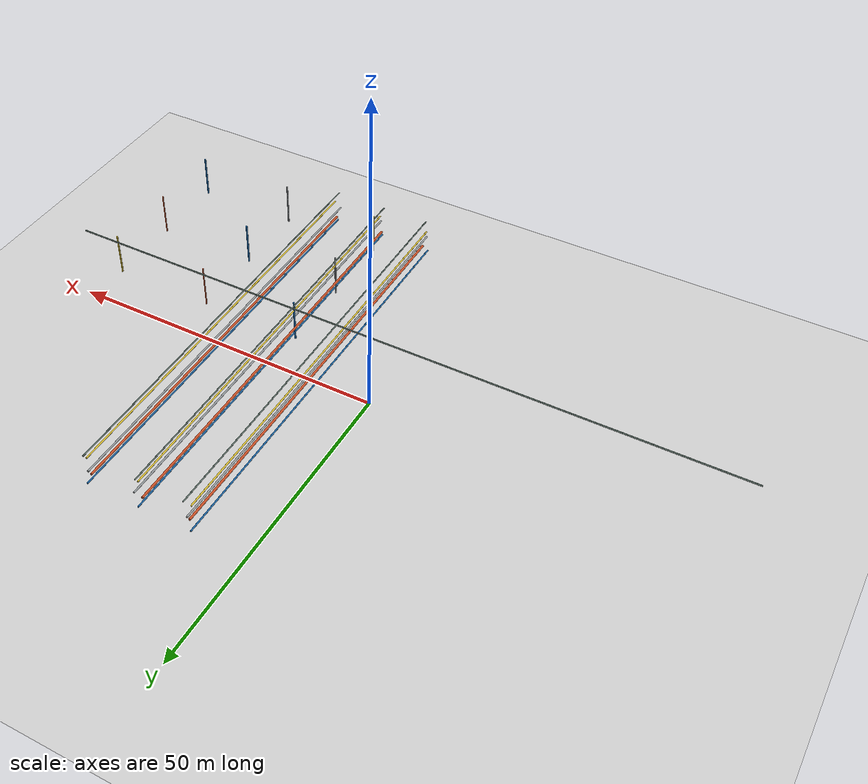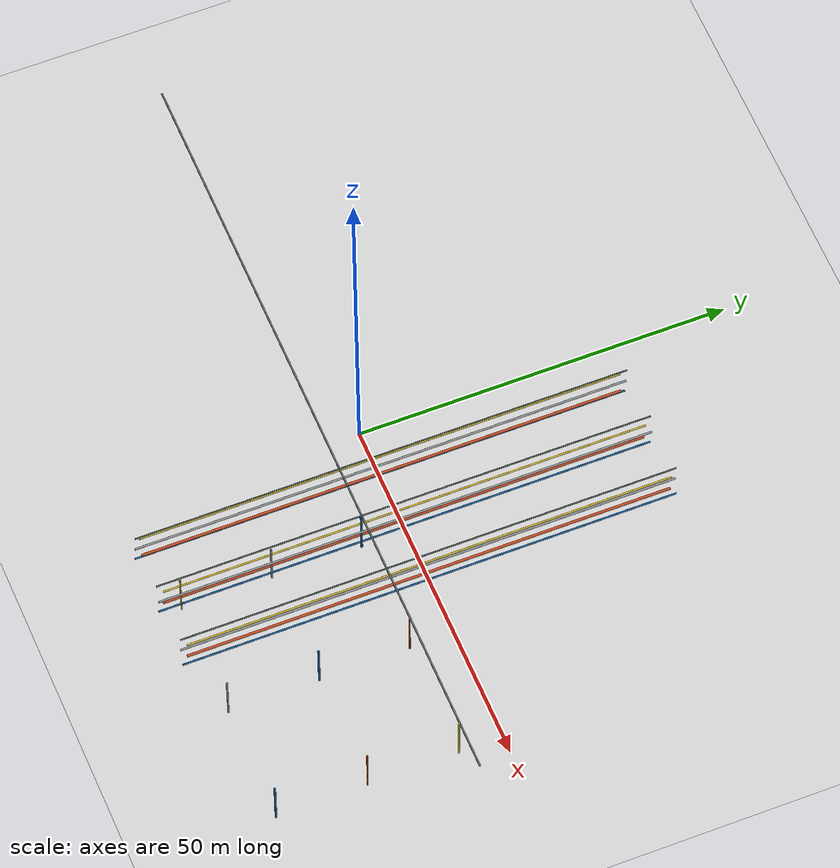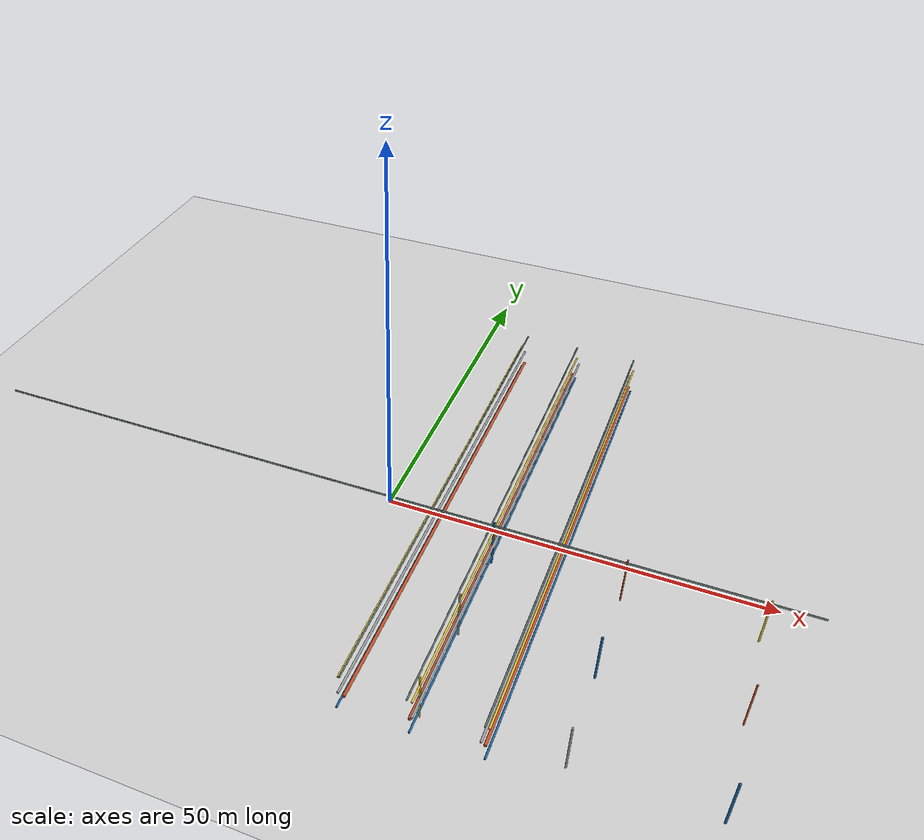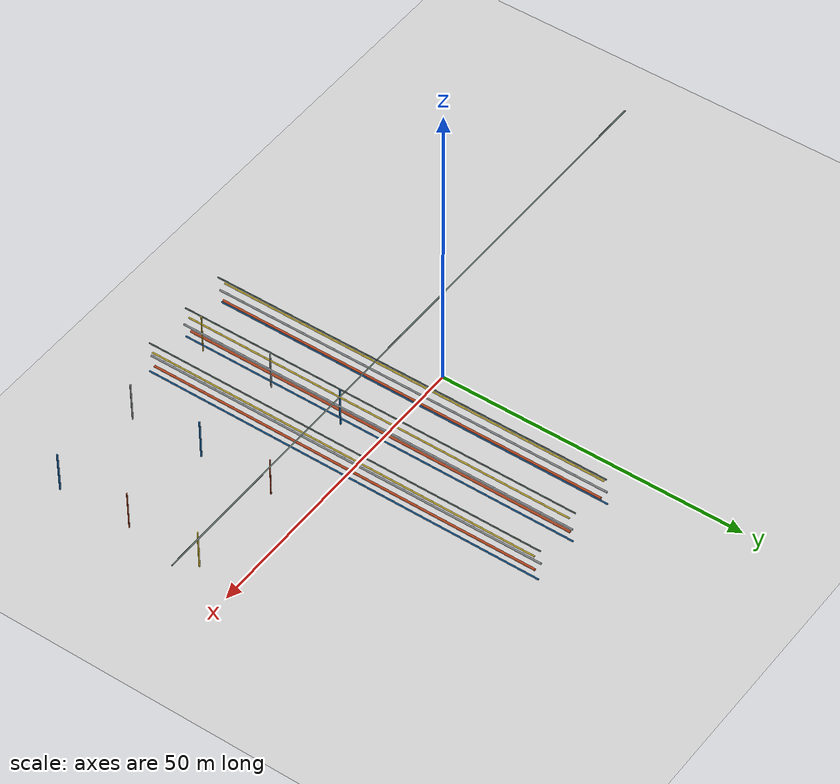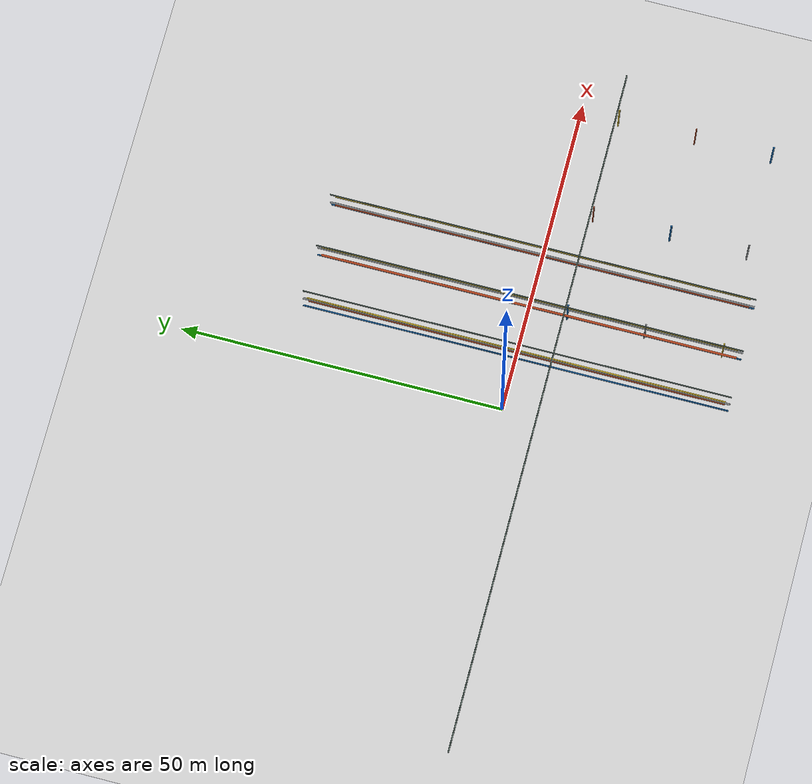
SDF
<sdf version="1.6">
 <world name="default">
  <include><uri>model://sun</uri></include>
  <include><uri>model://ground_plane</uri></include>
  <model name="dense_interwoven_pipe_grid">
   <static>true</static>
   <link name="x_pipe_r04_l4">
    <pose>0 -5.68 6.75 0 1.5708 0</pose>
    <collision name="collision">
     <geometry><cylinder><radius>0.110</radius><length>108.00</length></cylinder></geometry>
    </collision>
    <visual name="visual">
     <geometry><cylinder><radius>0.110</radius><length>108.00</length></cylinder></geometry>
     <material><ambient>0.20 0.24 0.23 1</ambient><diffuse>0.36 0.43 0.40 1</diffuse></material>
    </visual>
   </link>
   <link name="y_pipe_c06_l0">
    <pose>7.72 0 1.90 1.5708 0 0</pose>
    <collision name="collision">
     <geometry><cylinder><radius>0.120</radius><length>66.00</length></cylinder></geometry>
    </collision>
    <visual name="visual">
     <geometry><cylinder><radius>0.120</radius><length>66.00</length></cylinder></geometry>
     <material><ambient>0.05 0.22 0.36 1</ambient><diffuse>0.10 0.38 0.62 1</diffuse></material>
    </visual>
   </link>
   <link name="y_pipe_c06_l1">
    <pose>8.28 0 3.10 1.5708 0 0</pose>
    <collision name="collision">
     <geometry><cylinder><radius>0.180</radius><length>64.50</length></cylinder></geometry>
    </collision>
    <visual name="visual">
     <geometry><cylinder><radius>0.180</radius><length>64.50</length></cylinder></geometry>
     <material><ambient>0.45 0.17 0.08 1</ambient><diffuse>0.77 0.30 0.14 1</diffuse></material>
    </visual>
   </link>
   <link name="y_pipe_c06_l2">
    <pose>8.00 0 4.55 1.5708 0 0</pose>
    <collision name="collision">
     <geometry><cylinder><radius>0.140</radius><length>66.00</length></cylinder></geometry>
    </collision>
    <visual name="visual">
     <geometry><cylinder><radius>0.140</radius><length>66.00</length></cylinder></geometry>
     <material><ambient>0.34 0.35 0.36 1</ambient><diffuse>0.58 0.60 0.61 1</diffuse></material>
    </visual>
   </link>
   <link name="y_pipe_c06_l3">
    <pose>7.72 0 6.10 1.5708 0 0</pose>
    <collision name="collision">
     <geometry><cylinder><radius>0.120</radius><length>64.50</length></cylinder></geometry>
    </collision>
    <visual name="visual">
     <geometry><cylinder><radius>0.120</radius><length>64.50</length></cylinder></geometry>
     <material><ambient>0.48 0.42 0.12 1</ambient><diffuse>0.86 0.75 0.20 1</diffuse></material>
    </visual>
   </link>
   <link name="y_pipe_c06_l4">
    <pose>8.28 0 7.35 1.5708 0 0</pose>
    <collision name="collision">
     <geometry><cylinder><radius>0.100</radius><length>66.00</length></cylinder></geometry>
    </collision>
    <visual name="visual">
     <geometry><cylinder><radius>0.100</radius><length>66.00</length></cylinder></geometry>
     <material><ambient>0.20 0.24 0.23 1</ambient><diffuse>0.36 0.43 0.40 1</diffuse></material>
    </visual>
   </link>
   <link name="y_pipe_c07_l0">
    <pose>16.00 0 1.90 1.5708 0 0</pose>
    <collision name="collision">
     <geometry><cylinder><radius>0.120</radius><length>66.00</length></cylinder></geometry>
    </collision>
    <visual name="visual">
     <geometry><cylinder><radius>0.120</radius><length>66.00</length></cylinder></geometry>
     <material><ambient>0.05 0.22 0.36 1</ambient><diffuse>0.10 0.38 0.62 1</diffuse></material>
    </visual>
   </link>
   <link name="y_pipe_c07_l1">
    <pose>15.72 0 3.10 1.5708 0 0</pose>
    <collision name="collision">
     <geometry><cylinder><radius>0.180</radius><length>64.50</length></cylinder></geometry>
    </collision>
    <visual name="visual">
     <geometry><cylinder><radius>0.180</radius><length>64.50</length></cylinder></geometry>
     <material><ambient>0.45 0.17 0.08 1</ambient><diffuse>0.77 0.30 0.14 1</diffuse></material>
    </visual>
   </link>
   <link name="y_pipe_c07_l2">
    <pose>16.28 0 4.55 1.5708 0 0</pose>
    <collision name="collision">
     <geometry><cylinder><radius>0.140</radius><length>66.00</length></cylinder></geometry>
    </collision>
    <visual name="visual">
     <geometry><cylinder><radius>0.140</radius><length>66.00</length></cylinder></geometry>
     <material><ambient>0.34 0.35 0.36 1</ambient><diffuse>0.58 0.60 0.61 1</diffuse></material>
    </visual>
   </link>
   <link name="y_pipe_c07_l3">
    <pose>16.00 0 6.10 1.5708 0 0</pose>
    <collision name="collision">
     <geometry><cylinder><radius>0.120</radius><length>64.50</length></cylinder></geometry>
    </collision>
    <visual name="visual">
     <geometry><cylinder><radius>0.120</radius><length>64.50</length></cylinder></geometry>
     <material><ambient>0.48 0.42 0.12 1</ambient><diffuse>0.86 0.75 0.20 1</diffuse></material>
    </visual>
   </link>
   <link name="y_pipe_c07_l4">
    <pose>15.72 0 7.35 1.5708 0 0</pose>
    <collision name="collision">
     <geometry><cylinder><radius>0.100</radius><length>66.00</length></cylinder></geometry>
    </collision>
    <visual name="visual">
     <geometry><cylinder><radius>0.100</radius><length>66.00</length></cylinder></geometry>
     <material><ambient>0.20 0.24 0.23 1</ambient><diffuse>0.36 0.43 0.40 1</diffuse></material>
    </visual>
   </link>
   <link name="y_pipe_c08_l0">
    <pose>24.28 0 1.90 1.5708 0 0</pose>
    <collision name="collision">
     <geometry><cylinder><radius>0.120</radius><length>66.00</length></cylinder></geometry>
    </collision>
    <visual name="visual">
     <geometry><cylinder><radius>0.120</radius><length>66.00</length></cylinder></geometry>
     <material><ambient>0.05 0.22 0.36 1</ambient><diffuse>0.10 0.38 0.62 1</diffuse></material>
    </visual>
   </link>
   <link name="y_pipe_c08_l1">
    <pose>24.00 0 3.10 1.5708 0 0</pose>
    <collision name="collision">
     <geometry><cylinder><radius>0.180</radius><length>64.50</length></cylinder></geometry>
    </collision>
    <visual name="visual">
     <geometry><cylinder><radius>0.180</radius><length>64.50</length></cylinder></geometry>
     <material><ambient>0.45 0.17 0.08 1</ambient><diffuse>0.77 0.30 0.14 1</diffuse></material>
    </visual>
   </link>
   <link name="y_pipe_c08_l2">
    <pose>23.72 0 4.55 1.5708 0 0</pose>
    <collision name="collision">
     <geometry><cylinder><radius>0.140</radius><length>66.00</length></cylinder></geometry>
    </collision>
    <visual name="visual">
     <geometry><cylinder><radius>0.140</radius><length>66.00</length></cylinder></geometry>
     <material><ambient>0.34 0.35 0.36 1</ambient><diffuse>0.58 0.60 0.61 1</diffuse></material>
    </visual>
   </link>
   <link name="y_pipe_c08_l3">
    <pose>24.28 0 6.10 1.5708 0 0</pose>
    <collision name="collision">
     <geometry><cylinder><radius>0.120</radius><length>64.50</length></cylinder></geometry>
    </collision>
    <visual name="visual">
     <geometry><cylinder><radius>0.120</radius><length>64.50</length></cylinder></geometry>
     <material><ambient>0.48 0.42 0.12 1</ambient><diffuse>0.86 0.75 0.20 1</diffuse></material>
    </visual>
   </link>
   <link name="y_pipe_c08_l4">
    <pose>24.00 0 7.35 1.5708 0 0</pose>
    <collision name="collision">
     <geometry><cylinder><radius>0.100</radius><length>66.00</length></cylinder></geometry>
    </collision>
    <visual name="visual">
     <geometry><cylinder><radius>0.100</radius><length>66.00</length></cylinder></geometry>
     <material><ambient>0.20 0.24 0.23 1</ambient><diffuse>0.36 0.43 0.40 1</diffuse></material>
    </visual>
   </link>
   <link name="riser_03_00">
    <pose>16.0 -30.0 4.15 0 0 0</pose>
    <collision name="collision">
     <geometry><cylinder><radius>0.100</radius><length>6.90</length></cylinder></geometry>
    </collision>
    <visual name="visual">
     <geometry><cylinder><radius>0.100</radius><length>6.90</length></cylinder></geometry>
     <material><ambient>0.48 0.42 0.12 1</ambient><diffuse>0.86 0.75 0.20 1</diffuse></material>
    </visual>
   </link>
   <link name="riser_03_01">
    <pose>16.0 -18.0 4.15 0 0 0</pose>
    <collision name="collision">
     <geometry><cylinder><radius>0.120</radius><length>6.90</length></cylinder></geometry>
    </collision>
    <visual name="visual">
     <geometry><cylinder><radius>0.120</radius><length>6.90</length></cylinder></geometry>
     <material><ambient>0.34 0.35 0.36 1</ambient><diffuse>0.58 0.60 0.61 1</diffuse></material>
    </visual>
   </link>
   <link name="riser_03_02">
    <pose>16.0 -6.0 4.15 0 0 0</pose>
    <collision name="collision">
     <geometry><cylinder><radius>0.140</radius><length>6.90</length></cylinder></geometry>
    </collision>
    <visual name="visual">
     <geometry><cylinder><radius>0.140</radius><length>6.90</length></cylinder></geometry>
     <material><ambient>0.05 0.22 0.36 1</ambient><diffuse>0.10 0.38 0.62 1</diffuse></material>
    </visual>
   </link>
   <link name="riser_04_00">
    <pose>32.0 -30.0 4.15 0 0 0</pose>
    <collision name="collision">
     <geometry><cylinder><radius>0.120</radius><length>6.90</length></cylinder></geometry>
    </collision>
    <visual name="visual">
     <geometry><cylinder><radius>0.120</radius><length>6.90</length></cylinder></geometry>
     <material><ambient>0.34 0.35 0.36 1</ambient><diffuse>0.58 0.60 0.61 1</diffuse></material>
    </visual>
   </link>
   <link name="riser_04_01">
    <pose>32.0 -18.0 4.15 0 0 0</pose>
    <collision name="collision">
     <geometry><cylinder><radius>0.140</radius><length>6.90</length></cylinder></geometry>
    </collision>
    <visual name="visual">
     <geometry><cylinder><radius>0.140</radius><length>6.90</length></cylinder></geometry>
     <material><ambient>0.05 0.22 0.36 1</ambient><diffuse>0.10 0.38 0.62 1</diffuse></material>
    </visual>
   </link>
   <link name="riser_04_02">
    <pose>32.0 -6.0 4.15 0 0 0</pose>
    <collision name="collision">
     <geometry><cylinder><radius>0.100</radius><length>6.90</length></cylinder></geometry>
    </collision>
    <visual name="visual">
     <geometry><cylinder><radius>0.100</radius><length>6.90</length></cylinder></geometry>
     <material><ambient>0.45 0.17 0.08 1</ambient><diffuse>0.77 0.30 0.14 1</diffuse></material>
    </visual>
   </link>
   <link name="riser_05_00">
    <pose>48.0 -30.0 4.15 0 0 0</pose>
    <collision name="collision">
     <geometry><cylinder><radius>0.140</radius><length>6.90</length></cylinder></geometry>
    </collision>
    <visual name="visual">
     <geometry><cylinder><radius>0.140</radius><length>6.90</length></cylinder></geometry>
     <material><ambient>0.05 0.22 0.36 1</ambient><diffuse>0.10 0.38 0.62 1</diffuse></material>
    </visual>
   </link>
   <link name="riser_05_01">
    <pose>48.0 -18.0 4.15 0 0 0</pose>
    <collision name="collision">
     <geometry><cylinder><radius>0.100</radius><length>6.90</length></cylinder></geometry>
    </collision>
    <visual name="visual">
     <geometry><cylinder><radius>0.100</radius><length>6.90</length></cylinder></geometry>
     <material><ambient>0.45 0.17 0.08 1</ambient><diffuse>0.77 0.30 0.14 1</diffuse></material>
    </visual>
   </link>
   <link name="riser_05_02">
    <pose>48.0 -6.0 4.15 0 0 0</pose>
    <collision name="collision">
     <geometry><cylinder><radius>0.120</radius><length>6.90</length></cylinder></geometry>
    </collision>
    <visual name="visual">
     <geometry><cylinder><radius>0.120</radius><length>6.90</length></cylinder></geometry>
     <material><ambient>0.48 0.42 0.12 1</ambient><diffuse>0.86 0.75 0.20 1</diffuse></material>
    </visual>
   </link>
  </model>
 </world>
</sdf>
